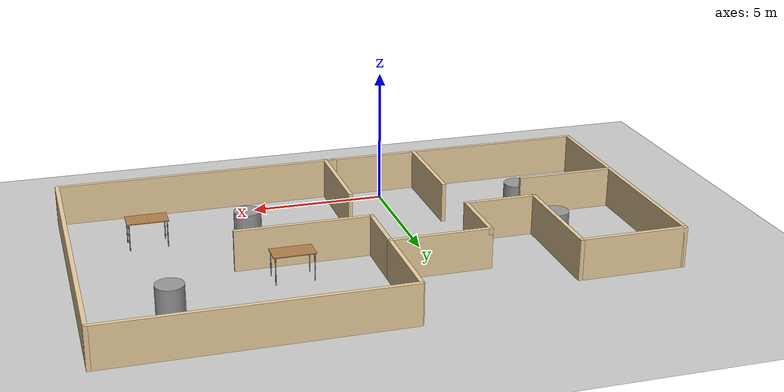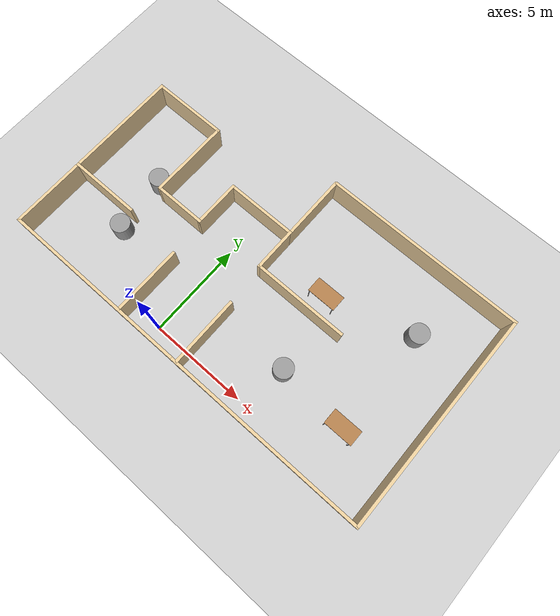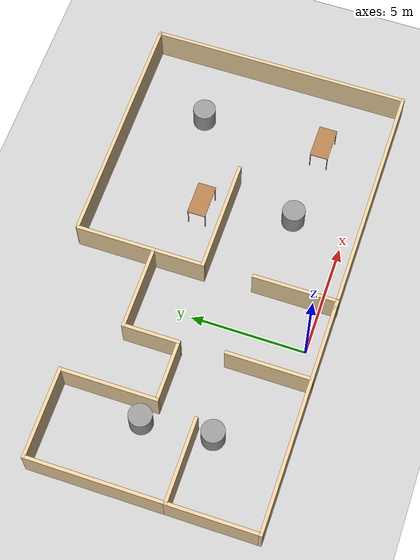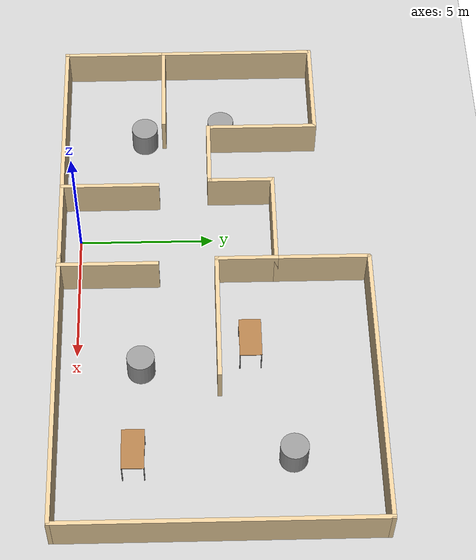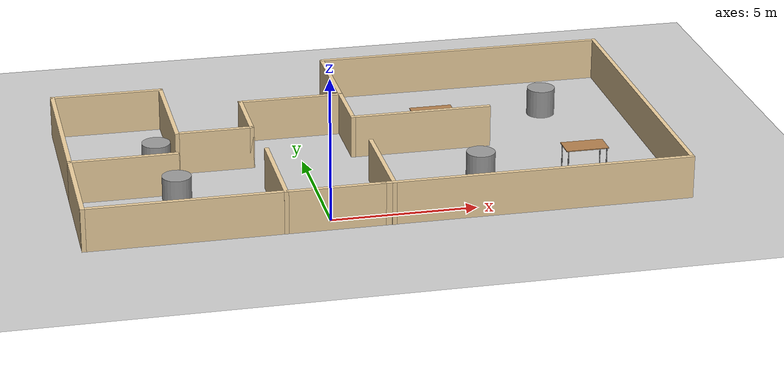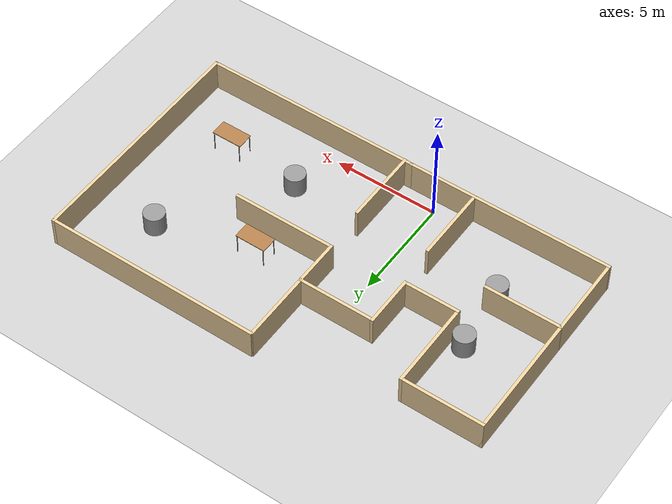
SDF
<sdf version="1.7">
 <world name="racecar_model1">
  <light name="sun" type="directional">
   <pose>0 0 10 0 -0 0</pose>
   <diffuse>0.8 0.8 0.8 1</diffuse>
   <specular>0.2 0.2 0.2 1</specular>
   <attenuation>
    <range>1000</range>
    <constant>0.9</constant>
    <linear>0.01</linear>
    <quadratic>0.001</quadratic>
   </attenuation>
   <direction>-0.5 0.1 -0.9</direction>
   <spot><inner_angle>0</inner_angle><outer_angle>0</outer_angle><falloff>0</falloff></spot>
  </light>
  <model name="ground_plane">
   <static>1</static>
   <link name="link">
    <collision name="collision">
     <geometry><plane><normal>0 0 1</normal><size>150 150</size></plane></geometry>
     <surface><friction><ode><mu>100</mu><mu2>50</mu2></ode></friction></surface>
    </collision>
    <visual name="visual">
     <cast_shadows>0</cast_shadows>
     <geometry><plane><normal>0 0 1</normal><size>150 150</size></plane></geometry>
     <material>
      <script><uri>file://media/materials/scripts/gazebo.material</uri><name>Gazebo/Grey</name></script>
     </material>
    </visual>
   </link>
  </model>
  <model name="model1">
   <pose>2 5 0 0 -0 0</pose>
   <link name="Wall_10">
    <collision name="Wall_10_Collision">
     <geometry><box><size>4.27427 0.15 1.5</size></box></geometry>
     <pose>0 0 0.75 0 -0 0</pose>
    </collision>
    <visual name="Wall_10_Visual">
     <pose>0 0 0.75 0 -0 0</pose>
     <geometry><box><size>4.27427 0.15 1.5</size></box></geometry>
     <material>
      <script><uri>file://media/materials/scripts/gazebo.material</uri><name>Gazebo/Grey</name></script>
      <ambient>0.921569 0.807843 0.615686 1</ambient>
     </material>
     <meta><layer>0</layer></meta>
    </visual>
    <pose>-6.37496 1.971 0 0 -0 -1.5708</pose>
   </link>
   <link name="Wall_11">
    <collision name="Wall_11_Collision">
     <geometry><box><size>2.75 0.15 1.5</size></box></geometry>
     <pose>0 0 0.75 0 -0 0</pose>
    </collision>
    <visual name="Wall_11_Visual">
     <pose>0 0 0.75 0 -0 0</pose>
     <geometry><box><size>2.75 0.15 1.5</size></box></geometry>
     <material>
      <script><uri>file://media/materials/scripts/gazebo.material</uri><name>Gazebo/Grey</name></script>
      <ambient>0.921569 0.807843 0.615686 1</ambient>
     </material>
     <meta><layer>0</layer></meta>
    </visual>
    <pose>-5.07496 -0.091 0 0 -0 0</pose>
   </link>
   <link name="Wall_12">
    <collision name="Wall_12_Collision">
     <geometry><box><size>2.524 0.15 1.5</size></box></geometry>
     <pose>0 0 0.75 0 -0 0</pose>
    </collision>
    <visual name="Wall_12_Visual">
     <pose>0 0 0.75 0 -0 0</pose>
     <geometry><box><size>2.524 0.15 1.5</size></box></geometry>
     <material>
      <script><uri>file://media/materials/scripts/gazebo.material</uri><name>Gazebo/Grey</name></script>
      <ambient>0.921569 0.807843 0.615686 1</ambient>
     </material>
     <meta><layer>0</layer></meta>
    </visual>
    <pose>-3.77496 1.096 0 0 -0 1.5708</pose>
   </link>
   <link name="Wall_13">
    <collision name="Wall_13_Collision">
     <geometry><box><size>3.75 0.15 1.5</size></box></geometry>
     <pose>0 0 0.75 0 -0 0</pose>
    </collision>
    <visual name="Wall_13_Visual">
     <pose>0 0 0.75 0 -0 0</pose>
     <geometry><box><size>3.75 0.15 1.5</size></box></geometry>
     <material>
      <script><uri>file://media/materials/scripts/gazebo.material</uri><name>Gazebo/Grey</name></script>
      <ambient>0.921569 0.807843 0.615686 1</ambient>
     </material>
     <meta><layer>0</layer></meta>
    </visual>
    <pose>-1.97496 2.283 0 0 -0 0</pose>
   </link>
   <link name="Wall_14">
    <collision name="Wall_14_Collision">
     <geometry><box><size>2.33014 0.15 1.5</size></box></geometry>
     <pose>0 0 0.75 0 -0 0</pose>
    </collision>
    <visual name="Wall_14_Visual">
     <pose>0 0 0.75 0 -0 0</pose>
     <geometry><box><size>2.33014 0.15 1.5</size></box></geometry>
     <material>
      <script><uri>file://media/materials/scripts/gazebo.material</uri><name>Gazebo/Grey</name></script>
      <ambient>0.921569 0.807843 0.615686 1</ambient>
     </material>
     <meta><layer>0</layer></meta>
    </visual>
    <pose>-0.174964 1.193 0 0 -0 -1.5708</pose>
   </link>
   <link name="Wall_15">
    <collision name="Wall_15_Collision">
     <geometry><box><size>5 0.15 1.5</size></box></geometry>
     <pose>0 0 0.75 0 -0 0</pose>
    </collision>
    <visual name="Wall_15_Visual">
     <pose>0 0 0.75 0 -0 0</pose>
     <geometry><box><size>5 0.15 1.5</size></box></geometry>
     <material>
      <script><uri>file://media/materials/scripts/gazebo.material</uri><name>Gazebo/Grey</name></script>
      <ambient>0.921569 0.807843 0.615686 1</ambient>
     </material>
     <meta><layer>0</layer></meta>
    </visual>
    <pose>2.25004 0.103 0 0 -0 0</pose>
   </link>
   <link name="Wall_17">
    <collision name="Wall_17_Collision">
     <geometry><box><size>10.732 0.15 1.5</size></box></geometry>
     <pose>0 0 0.75 0 -0 0</pose>
    </collision>
    <visual name="Wall_17_Visual">
     <pose>0 0 0.75 0 -0 0</pose>
     <geometry><box><size>10.732 0.15 1.5</size></box></geometry>
     <material>
      <script><uri>file://media/materials/scripts/gazebo.material</uri><name>Gazebo/Grey</name></script>
      <ambient>0.921569 0.807843 0.615686 1</ambient>
     </material>
     <meta><layer>0</layer></meta>
    </visual>
    <pose>4.93404 -5.667 0 0 -0 0</pose>
   </link>
   <link name="Wall_18">
    <collision name="Wall_18_Collision">
     <geometry><box><size>11.5 0.15 1.5</size></box></geometry>
     <pose>0 0 0.75 0 -0 0</pose>
    </collision>
    <visual name="Wall_18_Visual">
     <pose>0 0 0.75 0 -0 0</pose>
     <geometry><box><size>11.5 0.15 1.5</size></box></geometry>
     <material>
      <script><uri>file://media/materials/scripts/gazebo.material</uri><name>Gazebo/Grey</name></script>
      <ambient>0.921569 0.807843 0.615686 1</ambient>
     </material>
     <meta><layer>0</layer></meta>
    </visual>
    <pose>10.225 0.008 0 0 -0 1.5708</pose>
   </link>
   <link name="Wall_19">
    <collision name="Wall_19_Collision">
     <geometry><box><size>10.5 0.15 1.5</size></box></geometry>
     <pose>0 0 0.75 0 -0 0</pose>
    </collision>
    <visual name="Wall_19_Visual">
     <pose>0 0 0.75 0 -0 0</pose>
     <geometry><box><size>10.5 0.15 1.5</size></box></geometry>
     <material>
      <script><uri>file://media/materials/scripts/gazebo.material</uri><name>Gazebo/Grey</name></script>
      <ambient>0.921569 0.807843 0.615686 1</ambient>
     </material>
     <meta><layer>0</layer></meta>
    </visual>
    <pose>5.05004 5.683 0 0 -0 3.14159</pose>
   </link>
   <link name="Wall_2">
    <collision name="Wall_2_Collision">
     <geometry><box><size>10.0182 0.15 1.5</size></box></geometry>
     <pose>0 0 0.75 0 -0 0</pose>
    </collision>
    <visual name="Wall_2_Visual">
     <pose>0 0 0.75 0 -0 0</pose>
     <geometry><box><size>10.0182 0.15 1.5</size></box></geometry>
     <material>
      <script><uri>file://media/materials/scripts/gazebo.material</uri><name>Gazebo/Grey</name></script>
      <ambient>0.921569 0.807843 0.615686 1</ambient>
     </material>
     <meta><layer>0</layer></meta>
    </visual>
    <pose>-5.29096 -5.667 0 0 -0 3.14159</pose>
   </link>
   <link name="Wall_21">
    <collision name="Wall_21_Collision">
     <geometry><box><size>3.5 0.15 1.5</size></box></geometry>
     <pose>0 0 0.75 0 -0 0</pose>
    </collision>
    <visual name="Wall_21_Visual">
     <pose>0 0 0.75 0 -0 0</pose>
     <geometry><box><size>3.5 0.15 1.5</size></box></geometry>
     <material>
      <script><uri>file://media/materials/scripts/gazebo.material</uri><name>Gazebo/Grey</name></script>
      <ambient>0.921569 0.807843 0.615686 1</ambient>
     </material>
     <meta><layer>0</layer></meta>
    </visual>
    <pose>-0.174964 3.958 0 0 -0 1.5708</pose>
   </link>
   <link name="Wall_23">
    <collision name="Wall_23_Collision">
     <geometry><box><size>3.75 0.15 1.5</size></box></geometry>
     <pose>0 0 0.75 0 -0 0</pose>
    </collision>
    <visual name="Wall_23_Visual">
     <pose>0 0 0.75 0 -0 0</pose>
     <geometry><box><size>3.75 0.15 1.5</size></box></geometry>
     <material>
      <script><uri>file://media/materials/scripts/gazebo.material</uri><name>Gazebo/Grey</name></script>
      <ambient>0.921569 0.807843 0.615686 1</ambient>
     </material>
     <meta><layer>0</layer></meta>
    </visual>
    <pose>-3.59896 -3.87 0 0 -0 1.5708</pose>
   </link>
   <link name="Wall_26">
    <collision name="Wall_26_Collision">
     <geometry><box><size>3.75 0.15 1.5</size></box></geometry>
     <pose>0 0 0.75 0 -0 0</pose>
    </collision>
    <visual name="Wall_26_Visual">
     <pose>0 0 0.75 0 -0 0</pose>
     <geometry><box><size>3.75 0.15 1.5</size></box></geometry>
     <material>
      <script><uri>file://media/materials/scripts/gazebo.material</uri><name>Gazebo/Grey</name></script>
      <ambient>0.921569 0.807843 0.615686 1</ambient>
     </material>
     <meta><layer>0</layer></meta>
    </visual>
    <pose>-0.003964 -3.883 0 0 -0 1.5708</pose>
   </link>
   <link name="Wall_3">
    <collision name="Wall_3_Collision">
     <geometry><box><size>4 0.15 1.5</size></box></geometry>
     <pose>0 0 0.75 0 -0 0</pose>
    </collision>
    <visual name="Wall_3_Visual">
     <pose>0 0 0.75 0 -0 0</pose>
     <geometry><box><size>4 0.15 1.5</size></box></geometry>
     <material>
      <script><uri>file://media/materials/scripts/gazebo.material</uri><name>Gazebo/Grey</name></script>
      <ambient>0.921569 0.807843 0.615686 1</ambient>
     </material>
     <meta><layer>0</layer></meta>
    </visual>
    <pose>-10.225 -3.742 0 0 -0 1.5708</pose>
   </link>
   <link name="Wall_4">
    <collision name="Wall_4_Collision">
     <geometry><box><size>3.75 0.15 1.5</size></box></geometry>
     <pose>0 0 0.75 0 -0 0</pose>
    </collision>
    <visual name="Wall_4_Visual">
     <pose>0 0 0.75 0 -0 0</pose>
     <geometry><box><size>3.75 0.15 1.5</size></box></geometry>
     <material>
      <script><uri>file://media/materials/scripts/gazebo.material</uri><name>Gazebo/Grey</name></script>
      <ambient>0.921569 0.807843 0.615686 1</ambient>
     </material>
     <meta><layer>0</layer></meta>
    </visual>
    <pose>-8.42496 -1.817 0 0 -0 0</pose>
   </link>
   <link name="Wall_6">
    <collision name="Wall_6_Collision">
     <geometry><box><size>6 0.15 1.5</size></box></geometry>
     <pose>0 0 0.75 0 -0 0</pose>
    </collision>
    <visual name="Wall_6_Visual">
     <pose>0 0 0.75 0 -0 0</pose>
     <geometry><box><size>6 0.15 1.5</size></box></geometry>
     <material>
      <script><uri>file://media/materials/scripts/gazebo.material</uri><name>Gazebo/Grey</name></script>
      <ambient>0.921569 0.807843 0.615686 1</ambient>
     </material>
     <meta><layer>0</layer></meta>
    </visual>
    <pose>-10.225 1.108 0 0 -0 1.5708</pose>
   </link>
   <link name="Wall_9">
    <collision name="Wall_9_Collision">
     <geometry><box><size>4 0.15 1.5</size></box></geometry>
     <pose>0 0 0.75 0 -0 0</pose>
    </collision>
    <visual name="Wall_9_Visual">
     <pose>0 0 0.75 0 -0 0</pose>
     <geometry><box><size>4 0.15 1.5</size></box></geometry>
     <material>
      <script><uri>file://media/materials/scripts/gazebo.material</uri><name>Gazebo/Grey</name></script>
      <ambient>0.921569 0.807843 0.615686 1</ambient>
     </material>
     <meta><layer>0</layer></meta>
    </visual>
    <pose>-8.29996 4.033 0 0 -0 0</pose>
   </link>
   <static>1</static>
  </model>
  <gravity>0 0 -9.8</gravity>
  <magnetic_field>6e-06 2.3e-05 -4.2e-05</magnetic_field>
  <atmosphere type="adiabatic"/>
  <physics type="ode">
   <max_step_size>0.001</max_step_size>
   <real_time_factor>1</real_time_factor>
   <real_time_update_rate>1000</real_time_update_rate>
  </physics>
  <scene><ambient>0.4 0.4 0.4 1</ambient><background>0.7 0.7 0.7 1</background><shadows>1</shadows></scene>
  <spherical_coordinates>
   <surface_model>EARTH_WGS84</surface_model>
   <latitude_deg>0</latitude_deg>
   <longitude_deg>0</longitude_deg>
   <elevation>0</elevation>
   <heading_deg>0</heading_deg>
  </spherical_coordinates>
  <model name="unit_cylinder">
   <pose>5.7032 2.321 0.499998 3e-06 -3e-06 0</pose>
   <link name="link">
    <inertial>
     <mass>1</mass>
     <inertia><ixx>0.145833</ixx><ixy>0</ixy><ixz>0</ixz><iyy>0.145833</iyy><iyz>0</iyz><izz>0.125</izz></inertia>
    </inertial>
    <collision name="collision">
     <geometry><cylinder><radius>0.5</radius><length>1</length></cylinder></geometry>
    </collision>
    <visual name="visual">
     <geometry><cylinder><radius>0.5</radius><length>1</length></cylinder></geometry>
     <material>
      <script><name>Gazebo/Grey</name><uri>file://media/materials/scripts/gazebo.material</uri></script>
     </material>
    </visual>
   </link>
  </model>
  <model name="unit_cylinder_0">
   <pose>9.31757 7.59807 0.499994 -4e-06 -3e-06 -0</pose>
   <link name="link">
    <inertial>
     <mass>1</mass>
     <inertia><ixx>0.145833</ixx><ixy>0</ixy><ixz>0</ixz><iyy>0.145833</iyy><iyz>0</iyz><izz>0.125</izz></inertia>
    </inertial>
    <collision name="collision">
     <geometry><cylinder><radius>0.5</radius><length>1</length></cylinder></geometry>
    </collision>
    <visual name="visual">
     <geometry><cylinder><radius>0.5</radius><length>1</length></cylinder></geometry>
     <material>
      <script><name>Gazebo/Grey</name><uri>file://media/materials/scripts/gazebo.material</uri></script>
     </material>
    </visual>
   </link>
  </model>
  <model name="unit_cylinder_1">
   <pose>-5.04156 5.39953 0.499998 3e-06 -4e-06 0</pose>
   <link name="link">
    <inertial>
     <mass>1</mass>
     <inertia><ixx>0.145833</ixx><ixy>0</ixy><ixz>0</ixz><iyy>0.145833</iyy><iyz>0</iyz><izz>0.125</izz></inertia>
    </inertial>
    <collision name="collision">
     <geometry><cylinder><radius>0.5</radius><length>1</length></cylinder></geometry>
    </collision>
    <visual name="visual">
     <geometry><cylinder><radius>0.5</radius><length>1</length></cylinder></geometry>
     <material>
      <script><name>Gazebo/Grey</name><uri>file://media/materials/scripts/gazebo.material</uri></script>
     </material>
    </visual>
   </link>
  </model>
  <model name="unit_cylinder_2">
   <pose>-4.75084 2.43281 0.499992 -3e-06 -4e-06 -0</pose>
   <link name="link">
    <inertial>
     <mass>1</mass>
     <inertia><ixx>0.145833</ixx><ixy>0</ixy><ixz>0</ixz><iyy>0.145833</iyy><iyz>0</iyz><izz>0.125</izz></inertia>
    </inertial>
    <collision name="collision">
     <geometry><cylinder><radius>0.5</radius><length>1</length></cylinder></geometry>
    </collision>
    <visual name="visual">
     <geometry><cylinder><radius>0.5</radius><length>1</length></cylinder></geometry>
     <material>
      <script><name>Gazebo/Grey</name><uri>file://media/materials/scripts/gazebo.material</uri></script>
     </material>
    </visual>
   </link>
  </model>
  <model name="table">
   <static>1</static>
   <link name="link">
    <collision name="surface">
     <pose>0 0 1 0 -0 0</pose>
     <geometry><box><size>1.5 0.8 0.03</size></box></geometry>
     <surface><friction><ode><mu>0.6</mu><mu2>0.6</mu2></ode></friction></surface>
    </collision>
    <visual name="visual1">
     <pose>0 0 1 0 -0 0</pose>
     <geometry><box><size>1.5 0.8 0.03</size></box></geometry>
     <material>
      <script><uri>file://media/materials/scripts/gazebo.material</uri><name>Gazebo/Wood</name></script>
     </material>
    </visual>
    <collision name="front_left_leg">
     <pose>0.68 0.38 0.5 0 -0 0</pose>
     <geometry><cylinder><radius>0.02</radius><length>1</length></cylinder></geometry>
    </collision>
    <visual name="front_left_leg">
     <pose>0.68 0.38 0.5 0 -0 0</pose>
     <geometry><cylinder><radius>0.02</radius><length>1</length></cylinder></geometry>
     <material>
      <script><uri>file://media/materials/scripts/gazebo.material</uri><name>Gazebo/Grey</name></script>
     </material>
    </visual>
    <collision name="front_right_leg">
     <pose>0.68 -0.38 0.5 0 -0 0</pose>
     <geometry><cylinder><radius>0.02</radius><length>1</length></cylinder></geometry>
    </collision>
    <visual name="front_right_leg">
     <pose>0.68 -0.38 0.5 0 -0 0</pose>
     <geometry><cylinder><radius>0.02</radius><length>1</length></cylinder></geometry>
     <material>
      <script><uri>file://media/materials/scripts/gazebo.material</uri><name>Gazebo/Grey</name></script>
     </material>
    </visual>
    <collision name="back_right_leg">
     <pose>-0.68 -0.38 0.5 0 -0 0</pose>
     <geometry><cylinder><radius>0.02</radius><length>1</length></cylinder></geometry>
    </collision>
    <visual name="back_right_leg">
     <pose>-0.68 -0.38 0.5 0 -0 0</pose>
     <geometry><cylinder><radius>0.02</radius><length>1</length></cylinder></geometry>
     <material>
      <script><uri>file://media/materials/scripts/gazebo.material</uri><name>Gazebo/Grey</name></script>
     </material>
    </visual>
    <collision name="back_left_leg">
     <pose>-0.68 0.38 0.5 0 -0 0</pose>
     <geometry><cylinder><radius>0.02</radius><length>1</length></cylinder></geometry>
    </collision>
    <visual name="back_left_leg">
     <pose>-0.68 0.38 0.5 0 -0 0</pose>
     <geometry><cylinder><radius>0.02</radius><length>1</length></cylinder></geometry>
     <material>
      <script><uri>file://media/materials/scripts/gazebo.material</uri><name>Gazebo/Grey</name></script>
     </material>
    </visual>
   </link>
   <pose>9.31703 2.0779 0 0 -0 0</pose>
  </model>
  <model name="table_0">
   <static>1</static>
   <link name="link">
    <collision name="surface">
     <pose>0 0 1 0 -0 0</pose>
     <geometry><box><size>1.5 0.8 0.03</size></box></geometry>
     <surface><friction><ode><mu>0.6</mu><mu2>0.6</mu2></ode></friction></surface>
    </collision>
    <visual name="visual1">
     <pose>0 0 1 0 -0 0</pose>
     <geometry><box><size>1.5 0.8 0.03</size></box></geometry>
     <material>
      <script><uri>file://media/materials/scripts/gazebo.material</uri><name>Gazebo/Wood</name></script>
     </material>
    </visual>
    <collision name="front_left_leg">
     <pose>0.68 0.38 0.5 0 -0 0</pose>
     <geometry><cylinder><radius>0.02</radius><length>1</length></cylinder></geometry>
    </collision>
    <visual name="front_left_leg">
     <pose>0.68 0.38 0.5 0 -0 0</pose>
     <geometry><cylinder><radius>0.02</radius><length>1</length></cylinder></geometry>
     <material>
      <script><uri>file://media/materials/scripts/gazebo.material</uri><name>Gazebo/Grey</name></script>
     </material>
    </visual>
    <collision name="front_right_leg">
     <pose>0.68 -0.38 0.5 0 -0 0</pose>
     <geometry><cylinder><radius>0.02</radius><length>1</length></cylinder></geometry>
    </collision>
    <visual name="front_right_leg">
     <pose>0.68 -0.38 0.5 0 -0 0</pose>
     <geometry><cylinder><radius>0.02</radius><length>1</length></cylinder></geometry>
     <material>
      <script><uri>file://media/materials/scripts/gazebo.material</uri><name>Gazebo/Grey</name></script>
     </material>
    </visual>
    <collision name="back_right_leg">
     <pose>-0.68 -0.38 0.5 0 -0 0</pose>
     <geometry><cylinder><radius>0.02</radius><length>1</length></cylinder></geometry>
    </collision>
    <visual name="back_right_leg">
     <pose>-0.68 -0.38 0.5 0 -0 0</pose>
     <geometry><cylinder><radius>0.02</radius><length>1</length></cylinder></geometry>
     <material>
      <script><uri>file://media/materials/scripts/gazebo.material</uri><name>Gazebo/Grey</name></script>
     </material>
    </visual>
    <collision name="back_left_leg">
     <pose>-0.68 0.38 0.5 0 -0 0</pose>
     <geometry><cylinder><radius>0.02</radius><length>1</length></cylinder></geometry>
    </collision>
    <visual name="back_left_leg">
     <pose>-0.68 0.38 0.5 0 -0 0</pose>
     <geometry><cylinder><radius>0.02</radius><length>1</length></cylinder></geometry>
     <material>
      <script><uri>file://media/materials/scripts/gazebo.material</uri><name>Gazebo/Grey</name></script>
     </material>
    </visual>
   </link>
   <pose>4.94541 6.23067 0 0 -0 0</pose>
  </model>
 </world>
</sdf>
